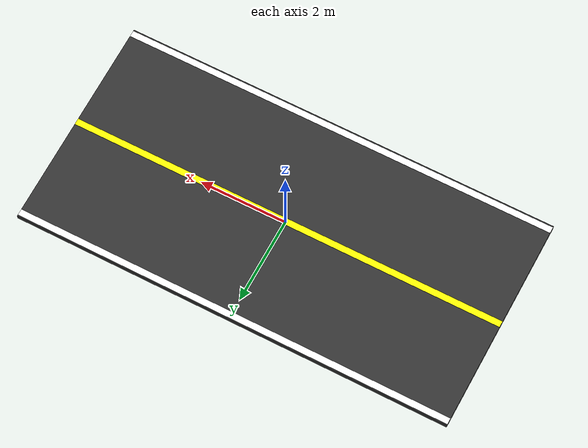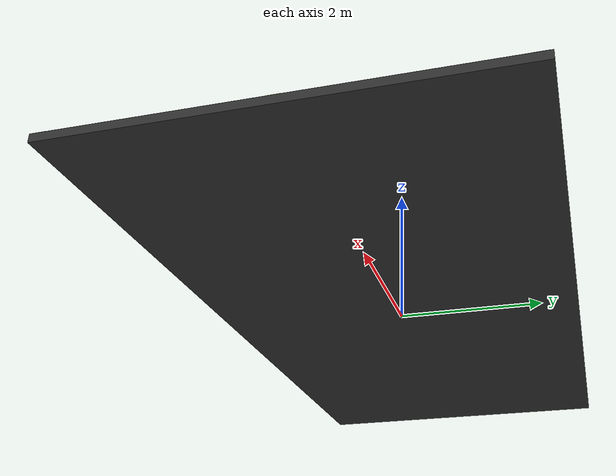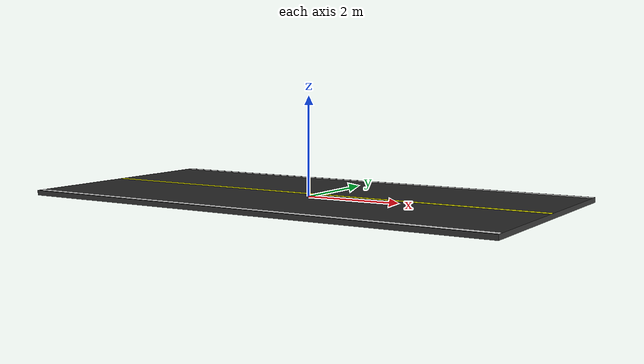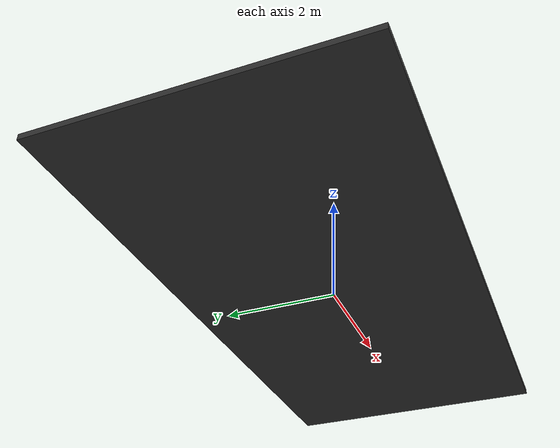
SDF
<?xml version="1.0" ?>
<sdf version="1.6">
  <model name="road_straight">
    <static>true</static>
    <link name="link">
      <collision name="collision">
        <geometry>
          <box>
            <size>10 5 0.1</size>
          </box>
        </geometry>
      </collision>

      <!-- Road Surface -->
      <visual name="visual_surface">
        <geometry>
          <box>
            <size>10 5 0.1</size>
          </box>
        </geometry>
        <material>
          <ambient>0.2 0.2 0.2 1</ambient>
          <diffuse>0.2 0.2 0.2 1</diffuse>
          <specular>0.1 0.1 0.1 1</specular>
        </material>
      </visual>

      <!-- Center Line (Yellow) -->
      <visual name="visual_center_line">
        <pose>0 0 0.051 0 0 0</pose>
        <geometry>
          <box>
            <size>10 0.15 0.001</size>
          </box>
        </geometry>
        <material>
          <ambient>1 1 0 1</ambient>
          <diffuse>1 1 0 1</diffuse>
        </material>
      </visual>

      <!-- Left Side Line (White) -->
      <visual name="visual_left_line">
        <pose>0 2.4 0.051 0 0 0</pose>
        <geometry>
          <box>
            <size>10 0.15 0.001</size>
          </box>
        </geometry>
        <material>
          <ambient>1 1 1 1</ambient>
          <diffuse>1 1 1 1</diffuse>
        </material>
      </visual>

      <!-- Right Side Line (White) -->
      <visual name="visual_right_line">
        <pose>0 -2.4 0.051 0 0 0</pose>
        <geometry>
          <box>
            <size>10 0.15 0.001</size>
          </box>
        </geometry>
        <material>
          <ambient>1 1 1 1</ambient>
          <diffuse>1 1 1 1</diffuse>
        </material>
      </visual>

    </link>
  </model>
</sdf>
